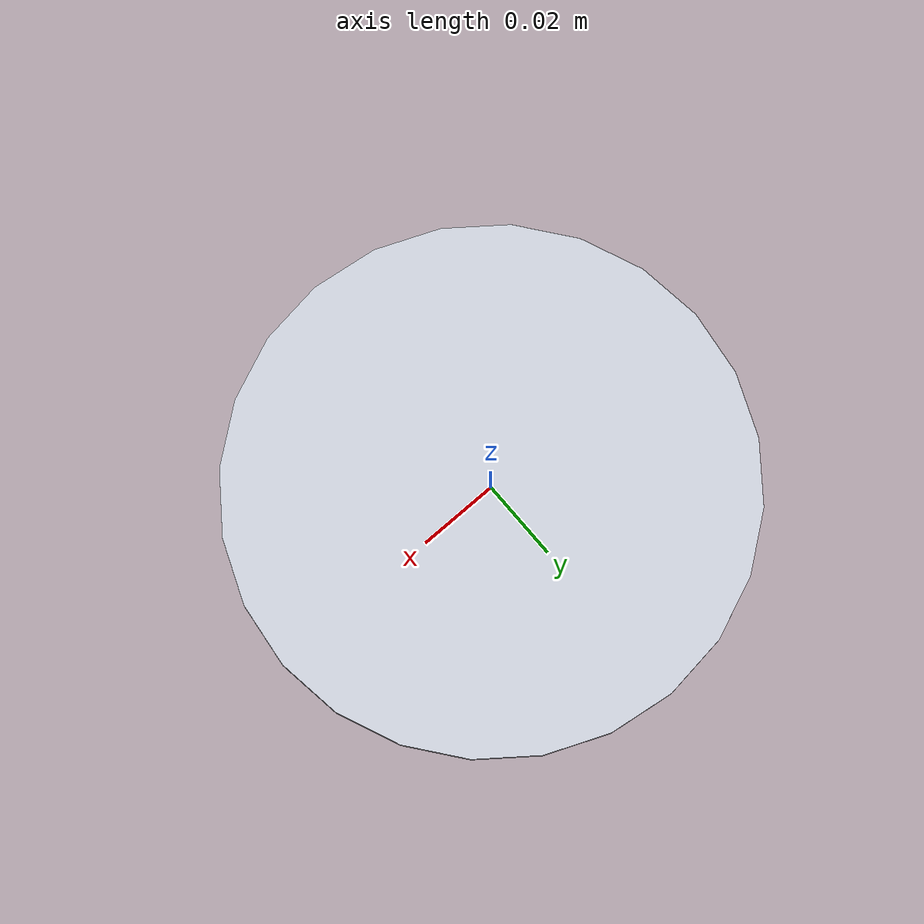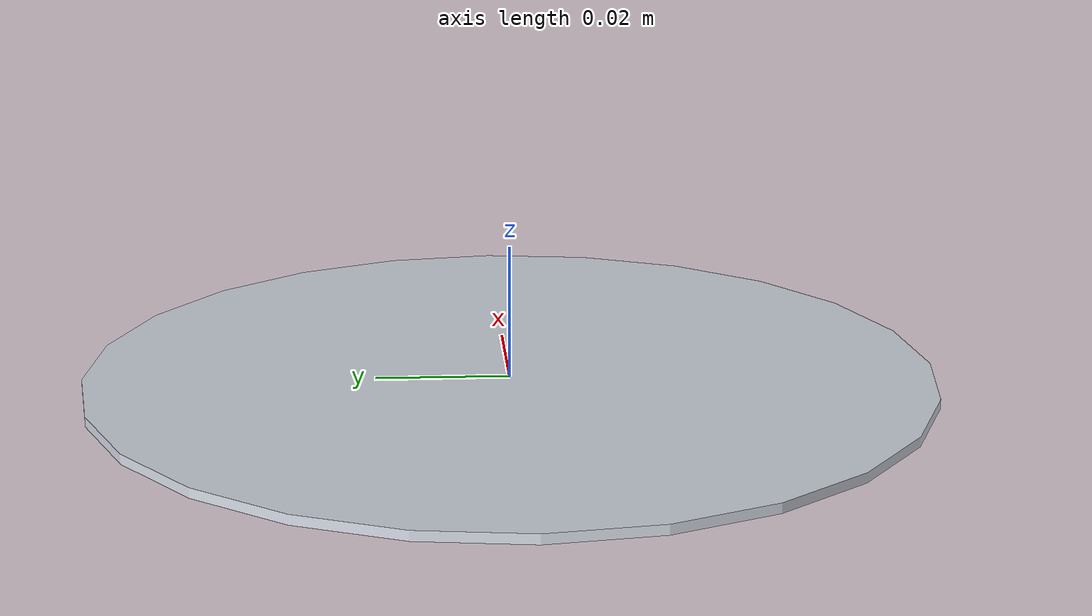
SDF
<?xml version="1.0" ?>
<!-- Copyright (c) 2026 Jatin Satyam. SPDX-License-Identifier: Apache-2.0 -->
<sdf version="1.10">
  <model name="wafer">
    <link name="link">
      <inertial>
        <mass>0.030</mass>
        <inertia><ixx>4.3e-5</ixx><ixy>0</ixy><ixz>0</ixz>
                 <iyy>4.3e-5</iyy><iyz>0</iyz><izz>8.4e-5</izz></inertia>
      </inertial>
      <visual name="v">
        <geometry><cylinder><radius>0.0635</radius><length>0.0015</length></cylinder></geometry>
        <material><ambient>0.55 0.57 0.60 1</ambient><diffuse>0.80 0.82 0.86 1</diffuse>
                  <specular>0.9 0.9 0.9 1</specular></material>
      </visual>
      <collision name="c">
        <geometry><cylinder><radius>0.0630</radius><length>0.0015</length></cylinder></geometry>
        <surface><friction><ode><mu>0.6</mu><mu2>0.6</mu2></ode></friction></surface>
      </collision>
    </link>
  </model>
</sdf>
